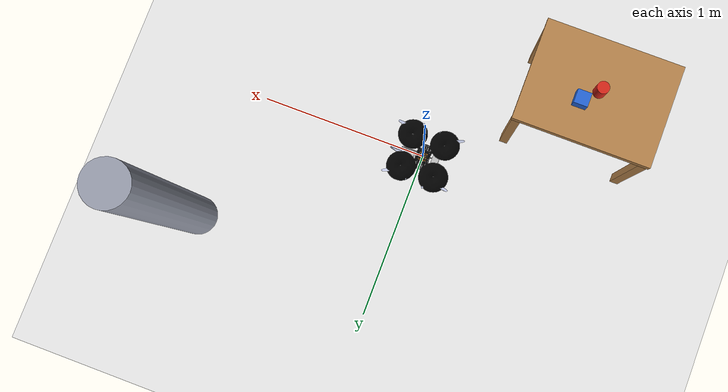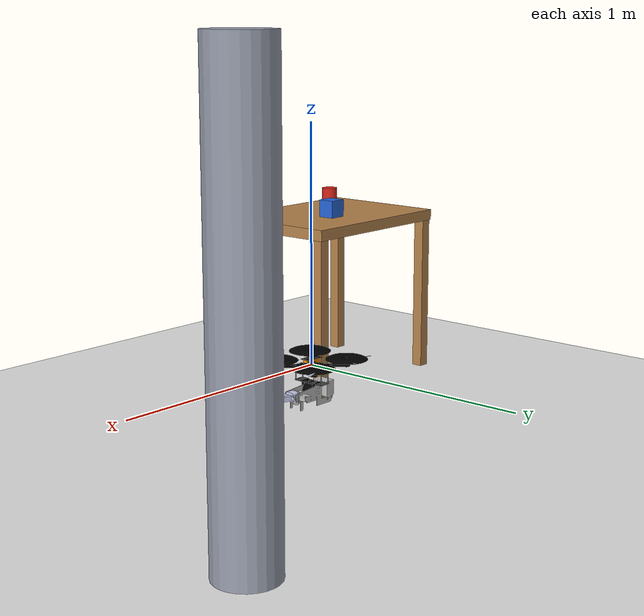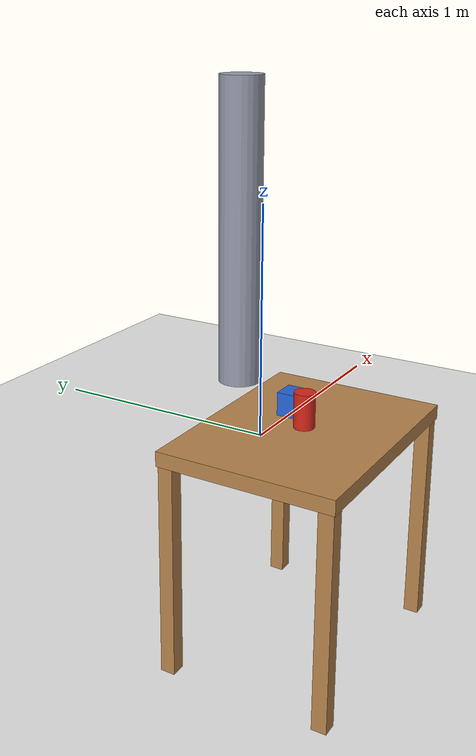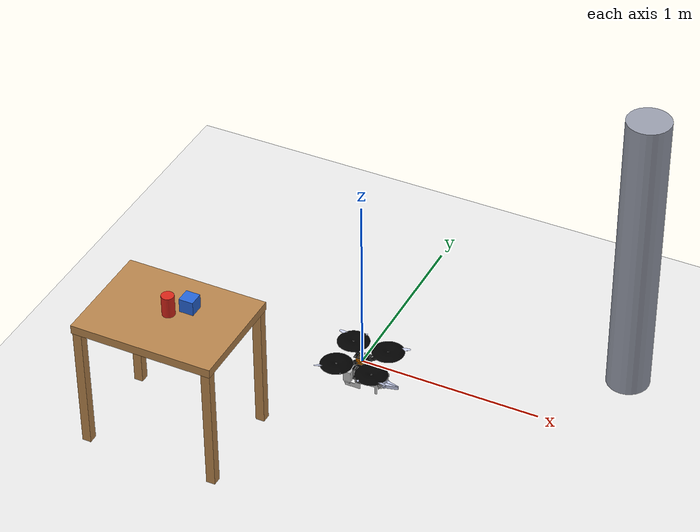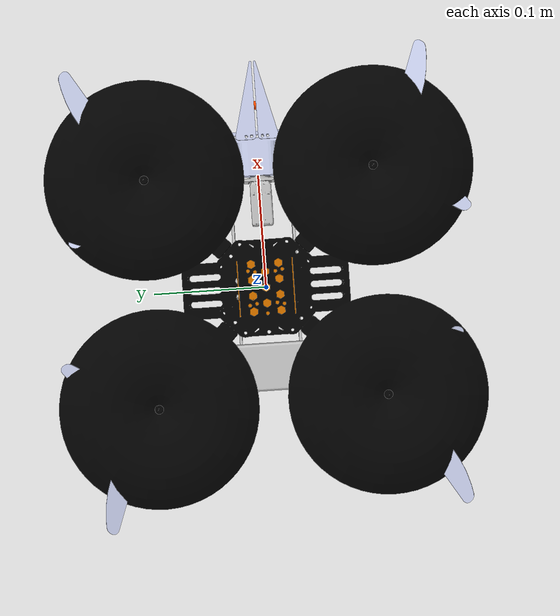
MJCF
<?xml version="1.0" encoding="utf-8"?>
<mujoco model="drone_scene_payload">

  <!-- 无缝复用 drone_converted.xml（包含 gripper_frame site） -->
  <include file="drone_converted.xml"/>

  <compiler angle="radian" meshdir="meshes" texturedir="."/>
  <option timestep="0.002" integrator="RK4"/>

  <default>
    <joint damping="2" armature="0.02" frictionloss="0.02"/>
    <geom solref="0.02 1" solimp="0.9 0.95 0.002" condim="3" friction="1 0.01 0.001"/>
  </default>

  <asset>
    <texture name="sky" type="skybox" builtin="flat"
             rgb1="0.96 0.96 0.96" rgb2="0.90 0.90 0.90"
             width="256" height="256"/>
  </asset>

  <worldbody>
    <light pos="0 0 2" dir="0 0 -1" diffuse="1 1 1" specular="0.2 0.2 0.2"/>

    <!-- 原始俯视相机（MuJoCo viewer 默认视角） -->
    <camera name="maincam" pos="0.7 0.7 0.45" quat="0.9239 0 0 0.3827"/>

    <!-- 固定全景相机：用于 rosbag 录制，可看到完整抓取过程 -->
    <!-- 位置: (2.5, 0, 2.5)，俯角约 45°，朝向场景中心 -->
    <!-- xyaxes: X轴(右)=(0,1,0), Y轴(上)=(-0.707,0,0.707) => 看向(-1,0,-1)方向 -->
    <camera name="overview_cam"
            pos="2.5 0.0 2.5"
            xyaxes="0 1 0  -0.707 0 0.707"
            fovy="70"/>

    <geom name="floor" type="plane" pos="0 0 -0.3" size="2 2 0.1"
          rgba="0.92 0.92 0.92 1" contype="1" conaffinity="1"/>

    <!-- 柱子 -->
    <geom name="pillar" type="cylinder"
          pos="1.2 0.8 0.55" size="0.12 0.85"
          rgba="0.60 0.62 0.68 1" contype="1" conaffinity="1"/>

    <!-- 桌子 -->
    <geom name="table_top" type="box"
          pos="-0.8 -0.6 0.45" size="0.40 0.30 0.025"
          rgba="0.72 0.52 0.30 1" contype="1" conaffinity="1"/>
    <geom name="table_leg_fl" type="box"
          pos="-0.43 -0.33 0.063" size="0.025 0.025 0.363"
          rgba="0.72 0.52 0.30 1" contype="1" conaffinity="1"/>
    <geom name="table_leg_fr" type="box"
          pos="-0.43 -0.87 0.063" size="0.025 0.025 0.363"
          rgba="0.72 0.52 0.30 1" contype="1" conaffinity="1"/>
    <geom name="table_leg_bl" type="box"
          pos="-1.17 -0.33 0.063" size="0.025 0.025 0.363"
          rgba="0.72 0.52 0.30 1" contype="1" conaffinity="1"/>
    <geom name="table_leg_br" type="box"
          pos="-1.17 -0.87 0.063" size="0.025 0.025 0.363"
          rgba="0.72 0.52 0.30 1" contype="1" conaffinity="1"/>

    <!-- 目标抓取物体：杯子 -->
    <body name="cup" pos="-0.8 -0.6 0.535">
      <freejoint name="cup_freejoint"/>
      <geom name="cup_geom" type="cylinder"
            size="0.035 0.06"
            rgba="0.85 0.15 0.10 1"
            mass="0.15"
            contype="1" conaffinity="1"/>
    </body>

    <!-- 障碍物：蓝色方块 -->
    <body name="obstacle_box" pos="-0.72 -0.52 0.515">
      <freejoint name="obstacle_box_freejoint"/>
      <geom name="obstacle_box_geom" type="box"
            size="0.04 0.04 0.04"
            rgba="0.15 0.40 0.85 1"
            mass="0.12"
            contype="1" conaffinity="1"/>
    </body>

    <body name="payload" pos="0 0 0">
      <freejoint name="payload_freejoint"/>
      <inertial pos="0 0 0" mass="0.1"
                diaginertia="4.17e-05 4.17e-05 4.17e-05"/>
      <!-- 橙色半透明方块，边长 5cm，便于视觉识别 -->
      <geom name="payload_geom" type="box"
            size="0.025 0.025 0.025"
            rgba="1.0 0.55 0.0 0.85"
            contype="0" conaffinity="0"/>
            <!-- contype/conaffinity=0: payload 不参与碰撞，避免干扰抓取 -->
    </body>

  </worldbody>

  <equality>
    <!-- 两指镜像耦合（与 scene_drone.xml 相同） -->
    <joint joint1="arm_right_finger_joint" joint2="arm_left_finger_joint" polycoef="0 -1 0 0 0"/>

    <weld name="payload_weld"
          body1="payload" body2="arm_roll_link"
          relpose="0.07 0 0  1 0 0 0"/>
  </equality>

  <actuator>
    <!-- 4 旋翼 -->
    <motor name="rotor0_motor" joint="rotor0_joint" gear="1" ctrllimited="true" ctrlrange="0 50"/>
    <motor name="rotor1_motor" joint="rotor1_joint" gear="1" ctrllimited="true" ctrlrange="0 50"/>
    <motor name="rotor2_motor" joint="rotor2_joint" gear="1" ctrllimited="true" ctrlrange="0 50"/>
    <motor name="rotor3_motor" joint="rotor3_joint" gear="1" ctrllimited="true" ctrlrange="0 50"/>

    <!-- 机械臂 3 关节 -->
    <position name="arm_pitch_servo"  joint="arm_pitch_joint"  kp="50" ctrlrange="0 1.5708"/>
    <position name="arm_pitch2_servo" joint="arm_pitch2_joint" kp="50" ctrlrange="-1.5708 1.5708"/>
    <position name="arm_roll_servo"   joint="arm_roll_joint"   kp="50" ctrlrange="-1.5708 1.5708"/>

    <!-- 夹爪 -->
    <position name="gripper_servo" joint="arm_right_finger_joint" kp="20" ctrlrange="-0.025 0.025"/>
  </actuator>

</mujoco>

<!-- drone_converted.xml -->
<mujoco model="drone_urdf">
  <compiler angle="radian" meshdir="meshes" />
  <asset>
    <mesh name="base_link" content_type="model/stl" file="base_link.STL" />
    <mesh name="arm_link_pitch" content_type="model/stl" file="arm_link_pitch.STL" />
    <mesh name="arm_link_pitch2" content_type="model/stl" file="arm_link_pitch2.STL" />
    <mesh name="arm_link_roll" content_type="model/stl" file="arm_link_roll.STL" />
    <mesh name="arm_link_right_finger" content_type="model/stl" file="arm_link_right_finger.STL" />
    <mesh name="arm_link_left_finger" content_type="model/stl" file="arm_link_left_finger.STL" />
    <mesh name="rotor_0" content_type="model/stl" file="rotor_0.STL" />
    <mesh name="rotor_1" content_type="model/stl" file="rotor_1.STL" />
    <mesh name="rotor_2" content_type="model/stl" file="rotor_2.STL" />
    <mesh name="rotor_3" content_type="model/stl" file="rotor_3.STL" />
    </asset>
  <worldbody>
    <body name="base_link" pos="0 0 0" quat="1 0 0 0">
      <freejoint name="base_free" />
      <geom type="mesh" rgba="0 0 0 1" mesh="base_link" />

      <!-- 前视深度相机：机头(+X)前方 6cm，朝 +X 方向看，fovy=60° (类 RealSense D435) -->
      <camera name="depth_cam"
              pos="0.06 0 -0.02"
              xyaxes="0 -1 0 0 0 1"
              fovy="60"/>

      <body name="arm_pitch_link" pos="-0.009 -0.0096 -0.108565">
        <inertial pos="-0.0398454 0.0119006 -0.00382043" quat="-0.000136126 0.576951 -0.00019689 0.816779" mass="0.278848" diaginertia="0.000286784 0.000276262 0.000197652" />
        <joint name="arm_pitch_joint" pos="0 0 0" axis="0 1 0" range="0 1.5708" actuatorfrcrange="-5 5" />
        <geom type="mesh" rgba="0.752941 0.752941 0.752941 1" mesh="arm_link_pitch" />
        <body name="arm_pitch2_link" pos="0.12175 0.00855 0">
          <inertial pos="-0.0235169 4.18533e-06 -0.00768195" quat="0.999822 -0.000819779 0.0188322 -0.00049632" mass="0.0210875" diaginertia="6.40168e-06 4.08924e-06 3.21556e-06" />
          <joint name="arm_pitch2_joint" pos="0 0 0" axis="0 1 0" range="-1.5708 1.5708" actuatorfrcrange="-5 5" />
          <geom type="mesh" rgba="0.752941 0.752941 0.752941 1" mesh="arm_link_pitch2" />

          <!-- 腕部相机：挂在 arm_pitch2_link，位于手指正上方，朝臂延伸方向 (+X) 看 -->
          <camera name="wrist_cam"
                  pos="0.025 0 0.04"
                  xyaxes="0 -1 0 0 0 1"/>

          <body name="arm_roll_link" pos="-0.01275 0 0">
            <inertial pos="0.0214596 0 0" quat="0.707107 0.707107 0 0" mass="0.0484342" diaginertia="1.16041e-05 1.15999e-05 1.03955e-05" />
            <joint name="arm_roll_joint" pos="0 0 0" axis="1 0 0" range="-1.5708 1.5708" actuatorfrcrange="-1 1" />
            <geom type="mesh" rgba="0.792157 0.819608 0.933333 1" mesh="arm_link_roll" />
            <!-- gripper_frame: 夹爪中心参考点，位于 arm_roll_link +X 方向 7cm 处 -->
            <site name="gripper_frame" pos="0.07 0 0" size="0.004" rgba="1 0.3 0 1"/>
            <body name="arm_right_finger_link" pos="0.041 0 0" quat="0 -1 0 0">
              <inertial pos="0.0266573 0.00731144 0" quat="0.531927 0.531927 0.465891 0.465891" mass="0.013758" diaginertia="4.72941e-06 4.43352e-06 6.94702e-07" />
              <joint name="arm_right_finger_joint" pos="0 0 0" axis="0 1 0" type="slide" range="-1.5708 1.5708" actuatorfrcrange="-1 1" />
              <geom type="mesh" rgba="0.792157 0.819608 0.933333 1" mesh="arm_link_right_finger" />
              </body>
            <body name="arm_left_finger_link" pos="0.041 0 0">
              <inertial pos="0.0266573 0.00731144 0" quat="0.531927 0.531927 0.465891 0.465891" mass="0.013758" diaginertia="4.72941e-06 4.43352e-06 6.94702e-07" />
              <joint name="arm_left_finger_joint" pos="0 0 0" axis="0 -1 0" type="slide" range="-1.5708 1.5708" actuatorfrcrange="-1 1" />
              <geom type="mesh" rgba="0.792157 0.819608 0.933333 1" mesh="arm_link_left_finger" />
              </body>
            </body>
          </body>
        </body>
      <body name="rotor0_link" pos="0.123744 0.123744 0.0211606">
        <inertial pos="4.10029e-07 2.17598e-07 0.00394569" quat="0.60751 0.361842 -0.607513 0.361843" mass="0.00513322" diaginertia="9.75117e-06 4.89108e-06 4.89084e-06" />
        <joint name="rotor0_joint" type="hinge" pos="0 0 0" axis="0 0 1" />
        <geom type="mesh" rgba="0.792157 0.819608 0.933333 1" mesh="rotor_0" />
        </body>
      <body name="rotor1_link" pos="-0.123744 0.123744 0.0212">
        <inertial pos="-1.75373e-07 8.47259e-09 0.00390633" quat="0.349938 0.614445 -0.349938 0.614445" mass="0.00513323" diaginertia="9.75113e-06 4.89097e-06 4.89091e-06" />
        <joint name="rotor1_joint" type="hinge" pos="0 0 0" axis="0 0 1" />
        <geom type="mesh" rgba="0.792157 0.819608 0.933333 1" mesh="rotor_1" />
        </body>
      <body name="rotor2_link" pos="-0.123744 -0.123744 0.0212">
        <inertial pos="-4.10029e-07 -2.17598e-07 0.00390632" quat="0.607513 0.361843 -0.60751 0.361842" mass="0.00513322" diaginertia="9.75117e-06 4.89108e-06 4.89084e-06" />
        <joint name="rotor2_joint" type="hinge" pos="0 0 0" axis="0 0 1" />
        <geom type="mesh" rgba="0.792157 0.819608 0.933333 1" mesh="rotor_2" />
        </body>
      <body name="rotor3_link" pos="0.123744 -0.123744 0.0212">
        <inertial pos="1.75373e-07 -8.47259e-09 0.00390633" quat="0.349938 0.614445 -0.349938 0.614445" mass="0.00513323" diaginertia="9.75113e-06 4.89097e-06 4.89091e-06" />
        <joint name="rotor3_joint" type="hinge" pos="0 0 0" axis="0 0 1" />
        <geom type="mesh" rgba="0.792157 0.819608 0.933333 1" mesh="rotor_3" />
        </body>
      <site name="imu_site" pos="0 0 0" size="0.005" />
      </body>
    </worldbody>
  </mujoco>
